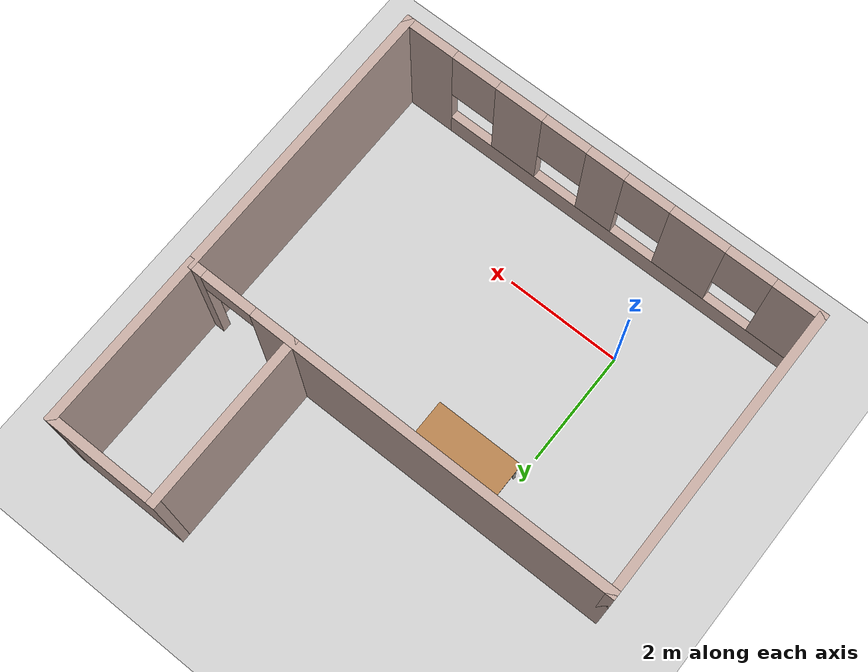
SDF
<sdf version="1.7">
 <world name="default">
  <light name="sun" type="directional">
   <pose>0 0 10 0 -0 0</pose>
   <diffuse>0.8 0.8 0.8 1</diffuse>
   <specular>0.2 0.2 0.2 1</specular>
   <attenuation>
    <range>1000</range>
    <constant>0.9</constant>
    <linear>0.01</linear>
    <quadratic>0.001</quadratic>
   </attenuation>
   <direction>-0.5 0.1 -0.9</direction>
   <spot><inner_angle>0</inner_angle><outer_angle>0</outer_angle><falloff>0</falloff></spot>
  </light>
  <model name="ground_plane">
   <static>1</static>
   <link name="link">
    <collision name="collision">
     <geometry><plane><normal>0 0 1</normal><size>100 100</size></plane></geometry>
     <surface>
      <contact><collide_bitmask>65535</collide_bitmask></contact>
      <friction><ode><mu>100</mu><mu2>50</mu2></ode></friction>
     </surface>
    </collision>
    <visual name="visual">
     <cast_shadows>0</cast_shadows>
     <geometry><plane><normal>0 0 1</normal><size>100 100</size></plane></geometry>
     <material>
      <script><uri>file://media/materials/scripts/gazebo.material</uri><name>Gazebo/Grey</name></script>
     </material>
    </visual>
   </link>
  </model>
  <gravity>0 0 -9.8</gravity>
  <magnetic_field>6e-06 2.3e-05 -4.2e-05</magnetic_field>
  <atmosphere type="adiabatic"/>
  <physics type="ode">
   <max_step_size>0.001</max_step_size>
   <real_time_factor>1</real_time_factor>
   <real_time_update_rate>1000</real_time_update_rate>
  </physics>
  <scene><ambient>0.4 0.4 0.4 1</ambient><background>0.7 0.7 0.7 1</background><shadows>1</shadows></scene>
  <spherical_coordinates>
   <surface_model>EARTH_WGS84</surface_model>
   <latitude_deg>0</latitude_deg>
   <longitude_deg>0</longitude_deg>
   <elevation>0</elevation>
   <heading_deg>0</heading_deg>
  </spherical_coordinates>
  <model name="barnda2">
   <pose>1.56728 2.32246 0 0 -0 0</pose>
   <link name="Wall_10">
    <collision name="Wall_10_Collision">
     <geometry><box><size>3 0.15 2.5</size></box></geometry>
     <pose>0 0 1.25 0 -0 0</pose>
    </collision>
    <visual name="Wall_10_Visual">
     <pose>0 0 1.25 0 -0 0</pose>
     <geometry><box><size>3 0.15 2.5</size></box></geometry>
     <material>
      <script><uri>file://media/materials/scripts/gazebo.material</uri><name>Gazebo/Grey</name></script>
      <ambient>0.760784 0.662745 0.627451 1</ambient>
     </material>
     <meta><layer>0</layer></meta>
    </visual>
    <pose>3.675 2.425 0 0 -0 1.5708</pose>
   </link>
   <link name="Wall_11">
    <collision name="Wall_11_Collision">
     <geometry><box><size>2 0.15 2.5</size></box></geometry>
     <pose>0 0 1.25 0 -0 0</pose>
    </collision>
    <visual name="Wall_11_Visual">
     <pose>0 0 1.25 0 -0 0</pose>
     <geometry><box><size>2 0.15 2.5</size></box></geometry>
     <material>
      <script><uri>file://media/materials/scripts/gazebo.material</uri><name>Gazebo/Grey</name></script>
      <ambient>0.760784 0.662745 0.627451 1</ambient>
     </material>
     <meta><layer>0</layer></meta>
    </visual>
    <pose>2.75 3.85 0 0 -0 3.14159</pose>
   </link>
   <link name="Wall_12">
    <collision name="Wall_12_Collision">
     <geometry><box><size>3 0.15 2.5</size></box></geometry>
     <pose>0 0 1.25 0 -0 0</pose>
    </collision>
    <visual name="Wall_12_Visual">
     <pose>0 0 1.25 0 -0 0</pose>
     <geometry><box><size>3 0.15 2.5</size></box></geometry>
     <material>
      <script><uri>file://media/materials/scripts/gazebo.material</uri><name>Gazebo/Grey</name></script>
      <ambient>0.760784 0.662745 0.627451 1</ambient>
     </material>
     <meta><layer>0</layer></meta>
    </visual>
    <pose>1.825 2.425 0 0 -0 -1.5708</pose>
   </link>
   <link name="Wall_4">
    <collision name="Wall_4_Collision">
     <geometry><box><size>5 0.15 2.5</size></box></geometry>
     <pose>0 0 1.25 0 -0 0</pose>
    </collision>
    <visual name="Wall_4_Visual">
     <pose>0 0 1.25 0 -0 0</pose>
     <geometry><box><size>5 0.15 2.5</size></box></geometry>
     <material>
      <script><uri>file://media/materials/scripts/gazebo.material</uri><name>Gazebo/Grey</name></script>
      <ambient>0.760784 0.662745 0.627451 1</ambient>
     </material>
     <meta><layer>0</layer></meta>
    </visual>
    <pose>3.675 -1.425 0 0 -0 -1.5708</pose>
   </link>
   <link name="Wall_5">
    <pose>-0 -3.85 0 0 -0 3.14159</pose>
    <visual name="Wall_5_Visual_0">
     <pose>-3.27132 0 1.25 0 -0 0</pose>
     <geometry><box><size>0.957369 0.15 2.5</size></box></geometry>
     <material>
      <script><uri>file://media/materials/scripts/gazebo.material</uri><name>Gazebo/Grey</name></script>
      <ambient>0.760784 0.662745 0.627451 1</ambient>
     </material>
     <meta><layer>0</layer></meta>
    </visual>
    <collision name="Wall_5_Collision_0">
     <geometry><box><size>0.957369 0.15 2.5</size></box></geometry>
     <pose>-3.27132 0 1.25 0 -0 0</pose>
    </collision>
    <visual name="Wall_5_Visual_1">
     <pose>0.478684 0 0.25 0 -0 0</pose>
     <geometry><box><size>6.54263 0.15 0.5</size></box></geometry>
     <material>
      <script><uri>file://media/materials/scripts/gazebo.material</uri><name>Gazebo/Grey</name></script>
      <ambient>0.760784 0.662745 0.627451 1</ambient>
     </material>
     <meta><layer>0</layer></meta>
    </visual>
    <collision name="Wall_5_Collision_1">
     <geometry><box><size>6.54263 0.15 0.5</size></box></geometry>
     <pose>0.478684 0 0.25 0 -0 0</pose>
    </collision>
    <visual name="Wall_5_Visual_2">
     <pose>-1.57121 0 1.5 0 -0 0</pose>
     <geometry><box><size>0.842845 0.15 2</size></box></geometry>
     <material>
      <script><uri>file://media/materials/scripts/gazebo.material</uri><name>Gazebo/Grey</name></script>
      <ambient>0.760784 0.662745 0.627451 1</ambient>
     </material>
     <meta><layer>0</layer></meta>
    </visual>
    <collision name="Wall_5_Collision_2">
     <geometry><box><size>0.842845 0.15 2</size></box></geometry>
     <pose>-1.57121 0 1.5 0 -0 0</pose>
    </collision>
    <visual name="Wall_5_Visual_3">
     <pose>-0.014829 0 1.5 0 -0 0</pose>
     <geometry><box><size>0.669914 0.15 2</size></box></geometry>
     <material>
      <script><uri>file://media/materials/scripts/gazebo.material</uri><name>Gazebo/Grey</name></script>
      <ambient>0.760784 0.662745 0.627451 1</ambient>
     </material>
     <meta><layer>0</layer></meta>
    </visual>
    <collision name="Wall_5_Collision_3">
     <geometry><box><size>0.669914 0.15 2</size></box></geometry>
     <pose>-0.014829 0 1.5 0 -0 0</pose>
    </collision>
    <visual name="Wall_5_Visual_4">
     <pose>1.60208 0 1.5 0 -0 0</pose>
     <geometry><box><size>0.963897 0.15 2</size></box></geometry>
     <material>
      <script><uri>file://media/materials/scripts/gazebo.material</uri><name>Gazebo/Grey</name></script>
      <ambient>0.760784 0.662745 0.627451 1</ambient>
     </material>
     <meta><layer>0</layer></meta>
    </visual>
    <collision name="Wall_5_Collision_4">
     <geometry><box><size>0.963897 0.15 2</size></box></geometry>
     <pose>1.60208 0 1.5 0 -0 0</pose>
    </collision>
    <visual name="Wall_5_Visual_5">
     <pose>3.31701 0 1.5 0 -0 0</pose>
     <geometry><box><size>0.865976 0.15 2</size></box></geometry>
     <material>
      <script><uri>file://media/materials/scripts/gazebo.material</uri><name>Gazebo/Grey</name></script>
      <ambient>0.760784 0.662745 0.627451 1</ambient>
     </material>
     <meta><layer>0</layer></meta>
    </visual>
    <collision name="Wall_5_Collision_5">
     <geometry><box><size>0.865976 0.15 2</size></box></geometry>
     <pose>3.31701 0 1.5 0 -0 0</pose>
    </collision>
    <visual name="Wall_5_Visual_6">
     <pose>-2.39263 0 1.9 0 -0 0</pose>
     <geometry><box><size>0.8 0.15 1.2</size></box></geometry>
     <material>
      <script><uri>file://media/materials/scripts/gazebo.material</uri><name>Gazebo/Grey</name></script>
      <ambient>0.760784 0.662745 0.627451 1</ambient>
     </material>
     <meta><layer>0</layer></meta>
    </visual>
    <collision name="Wall_5_Collision_6">
     <geometry><box><size>0.8 0.15 1.2</size></box></geometry>
     <pose>-2.39263 0 1.9 0 -0 0</pose>
    </collision>
    <visual name="Wall_5_Visual_7">
     <pose>-0.749786 0 1.9 0 -0 0</pose>
     <geometry><box><size>0.8 0.15 1.2</size></box></geometry>
     <material>
      <script><uri>file://media/materials/scripts/gazebo.material</uri><name>Gazebo/Grey</name></script>
      <ambient>0.760784 0.662745 0.627451 1</ambient>
     </material>
     <meta><layer>0</layer></meta>
    </visual>
    <collision name="Wall_5_Collision_7">
     <geometry><box><size>0.8 0.15 1.2</size></box></geometry>
     <pose>-0.749786 0 1.9 0 -0 0</pose>
    </collision>
    <visual name="Wall_5_Visual_8">
     <pose>0.720128 0 1.9 0 -0 0</pose>
     <geometry><box><size>0.8 0.15 1.2</size></box></geometry>
     <material>
      <script><uri>file://media/materials/scripts/gazebo.material</uri><name>Gazebo/Grey</name></script>
      <ambient>0.760784 0.662745 0.627451 1</ambient>
     </material>
     <meta><layer>0</layer></meta>
    </visual>
    <collision name="Wall_5_Collision_8">
     <geometry><box><size>0.8 0.15 1.2</size></box></geometry>
     <pose>0.720128 0 1.9 0 -0 0</pose>
    </collision>
    <visual name="Wall_5_Visual_9">
     <pose>2.48402 0 1.9 0 -0 0</pose>
     <geometry><box><size>0.8 0.15 1.2</size></box></geometry>
     <material>
      <script><uri>file://media/materials/scripts/gazebo.material</uri><name>Gazebo/Grey</name></script>
      <ambient>0.760784 0.662745 0.627451 1</ambient>
     </material>
     <meta><layer>0</layer></meta>
    </visual>
    <collision name="Wall_5_Collision_9">
     <geometry><box><size>0.8 0.15 1.2</size></box></geometry>
     <pose>2.48402 0 1.9 0 -0 0</pose>
    </collision>
   </link>
   <link name="Wall_6">
    <collision name="Wall_6_Collision">
     <geometry><box><size>5 0.15 2.5</size></box></geometry>
     <pose>0 0 1.25 0 -0 0</pose>
    </collision>
    <visual name="Wall_6_Visual">
     <pose>0 0 1.25 0 -0 0</pose>
     <geometry><box><size>5 0.15 2.5</size></box></geometry>
     <material>
      <script><uri>file://media/materials/scripts/gazebo.material</uri><name>Gazebo/Grey</name></script>
      <ambient>0.760784 0.662745 0.627451 1</ambient>
     </material>
     <meta><layer>0</layer></meta>
    </visual>
    <pose>-3.675 -1.425 0 0 -0 1.5708</pose>
   </link>
   <link name="Wall_7">
    <pose>-0 1 0 0 -0 0</pose>
    <visual name="Wall_7_Visual_0">
     <pose>-0.612348 0 1.25 0 -0 0</pose>
     <geometry><box><size>6.27531 0.15 2.5</size></box></geometry>
     <material>
      <script><uri>file://media/materials/scripts/gazebo.material</uri><name>Gazebo/Grey</name></script>
      <ambient>0.760784 0.662745 0.627451 1</ambient>
     </material>
     <meta><layer>0</layer></meta>
    </visual>
    <collision name="Wall_7_Collision_0">
     <geometry><box><size>6.27531 0.15 2.5</size></box></geometry>
     <pose>-0.612348 0 1.25 0 -0 0</pose>
    </collision>
    <visual name="Wall_7_Visual_1">
     <pose>3.58765 0 1.25 0 -0 0</pose>
     <geometry><box><size>0.324695 0.15 2.5</size></box></geometry>
     <material>
      <script><uri>file://media/materials/scripts/gazebo.material</uri><name>Gazebo/Grey</name></script>
      <ambient>0.760784 0.662745 0.627451 1</ambient>
     </material>
     <meta><layer>0</layer></meta>
    </visual>
    <collision name="Wall_7_Collision_1">
     <geometry><box><size>0.324695 0.15 2.5</size></box></geometry>
     <pose>3.58765 0 1.25 0 -0 0</pose>
    </collision>
    <visual name="Wall_7_Visual_2">
     <pose>2.97531 0 2.25 0 -0 0</pose>
     <geometry><box><size>0.9 0.15 0.5</size></box></geometry>
     <material>
      <script><uri>file://media/materials/scripts/gazebo.material</uri><name>Gazebo/Grey</name></script>
      <ambient>0.760784 0.662745 0.627451 1</ambient>
     </material>
     <meta><layer>0</layer></meta>
    </visual>
    <collision name="Wall_7_Collision_2">
     <geometry><box><size>0.9 0.15 0.5</size></box></geometry>
     <pose>2.97531 0 2.25 0 -0 0</pose>
    </collision>
   </link>
   <static>1</static>
  </model>
  <model name="table">
   <static>1</static>
   <link name="link">
    <collision name="surface">
     <pose>0 0 1 0 -0 0</pose>
     <geometry><box><size>1.5 0.8 0.03</size></box></geometry>
     <surface><friction><ode><mu>0.6</mu><mu2>0.6</mu2></ode></friction></surface>
    </collision>
    <visual name="visual1">
     <pose>0 0 1 0 -0 0</pose>
     <geometry><box><size>1.5 0.8 0.03</size></box></geometry>
     <material>
      <script><uri>file://media/materials/scripts/gazebo.material</uri><name>Gazebo/Wood</name></script>
     </material>
    </visual>
    <collision name="front_left_leg">
     <pose>0.68 0.38 0.5 0 -0 0</pose>
     <geometry><cylinder><radius>0.02</radius><length>1</length></cylinder></geometry>
    </collision>
    <visual name="front_left_leg">
     <pose>0.68 0.38 0.5 0 -0 0</pose>
     <geometry><cylinder><radius>0.02</radius><length>1</length></cylinder></geometry>
     <material>
      <script><uri>file://media/materials/scripts/gazebo.material</uri><name>Gazebo/Grey</name></script>
     </material>
    </visual>
    <collision name="front_right_leg">
     <pose>0.68 -0.38 0.5 0 -0 0</pose>
     <geometry><cylinder><radius>0.02</radius><length>1</length></cylinder></geometry>
    </collision>
    <visual name="front_right_leg">
     <pose>0.68 -0.38 0.5 0 -0 0</pose>
     <geometry><cylinder><radius>0.02</radius><length>1</length></cylinder></geometry>
     <material>
      <script><uri>file://media/materials/scripts/gazebo.material</uri><name>Gazebo/Grey</name></script>
     </material>
    </visual>
    <collision name="back_right_leg">
     <pose>-0.68 -0.38 0.5 0 -0 0</pose>
     <geometry><cylinder><radius>0.02</radius><length>1</length></cylinder></geometry>
    </collision>
    <visual name="back_right_leg">
     <pose>-0.68 -0.38 0.5 0 -0 0</pose>
     <geometry><cylinder><radius>0.02</radius><length>1</length></cylinder></geometry>
     <material>
      <script><uri>file://media/materials/scripts/gazebo.material</uri><name>Gazebo/Grey</name></script>
     </material>
    </visual>
    <collision name="back_left_leg">
     <pose>-0.68 0.38 0.5 0 -0 0</pose>
     <geometry><cylinder><radius>0.02</radius><length>1</length></cylinder></geometry>
    </collision>
    <visual name="back_left_leg">
     <pose>-0.68 0.38 0.5 0 -0 0</pose>
     <geometry><cylinder><radius>0.02</radius><length>1</length></cylinder></geometry>
     <material>
      <script><uri>file://media/materials/scripts/gazebo.material</uri><name>Gazebo/Grey</name></script>
     </material>
    </visual>
   </link>
   <pose>0.762486 2.81069 0 0 -0 0</pose>
  </model>
 </world>
</sdf>
